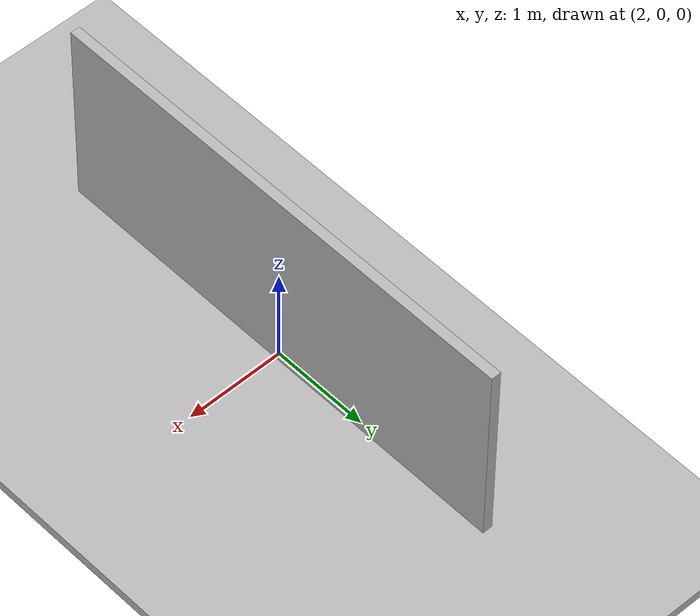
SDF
<?xml version="1.0" ?>
<sdf version="1.9">
<world name="lidar_test">

  <plugin filename="gz-sim-physics-system"
          name="gz::sim::systems::Physics"/>
  <plugin filename="gz-sim-scene-broadcaster-system"
          name="gz::sim::systems::SceneBroadcaster"/>
  <plugin filename="gz-sim-sensors-system"
          name="gz::sim::systems::Sensors">
    <render_engine>ogre2</render_engine>
  </plugin>
  <scene>
    <ambient>1 1 1 1</ambient>
    <background>0.8 0.8 0.8 1</background>
    <shadows>false</shadows>  <!-- shadows can cause render context issues -->
    </scene>

  <!-- ground as box, NOT plane -->
  <model name="ground">
    <static>true</static>
    <link name="link">
      <collision name="col">
        <pose>0 0 -0.05 0 0 0</pose>
        <geometry><box><size>100 100 0.1</size></box></geometry>
      </collision>
      <visual name="vis">
        <pose>0 0 -0.05 0 0 0</pose>
        <geometry><box><size>100 100 0.1</size></box></geometry>
      </visual>
    </link>
  </model>

  <!-- a wall right in front to guarantee hits -->
  <model name="wall">
    <static>true</static>
    <pose>2 0 1 0 0 0</pose>
    <link name="link">
      <collision name="col">
        <geometry><box><size>0.1 5 2</size></box></geometry>
      </collision>
      <visual name="vis">
        <geometry><box><size>0.1 5 2</size></box></geometry>
      </visual>
    </link>
  </model>

  <!-- lidar model, completely standalone -->
  <model name="lidar_model">
    <static>true</static>
    <pose>0 0 0.5 0 0 0</pose>
    <link name="lidar_link">
      <sensor name="gpu_lidar" type="gpu_lidar">
        <always_on>true</always_on>
        <update_rate>10</update_rate>
        <topic>/lidar</topic>
        <visualize>true</visualize>
        <lidar>
          <scan>
            <horizontal>
              <samples>640</samples>
              <resolution>1</resolution>
              <min_angle>-3.14159</min_angle>
              <max_angle>3.14159</max_angle>
            </horizontal>
            <vertical>
              <samples>1</samples>
              <resolution>1</resolution>
              <min_angle>0</min_angle>
              <max_angle>0</max_angle>
            </vertical>
          </scan>
          <range>
            <min>0.08</min>
            <max>10.0</max>
            <resolution>0.01</resolution>
          </range>
        </lidar>
      </sensor>
    </link>
  </model>

</world>
</sdf>
